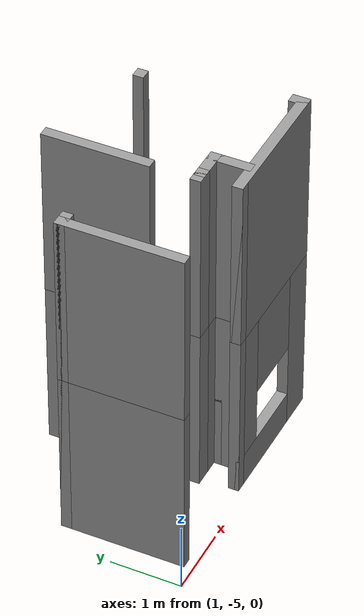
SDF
<sdf version="1.6">
 <model name="TwoStoreyBuilding">
  <link name="Wall_108">
   <pose>4.825 -4.775 2.5 0 0 -1.5708</pose>
   <visual name="Wall_108_Visual">
    <pose>0 0 1.25 0 -0 0</pose>
    <geometry><box><size>0.25 0.15 2.5</size></box></geometry>
    <material>
     <script><uri>file://media/materials/scripts/gazebo.material</uri><name>Gazebo/Grey</name></script>
     <ambient>1 1 1 1</ambient>
    </material>
    <meta><layer>1</layer></meta>
   </visual>
   <collision name="Wall_108_Collision">
    <pose>0 0 1.25 0 -0 0</pose>
    <geometry><box><size>0.25 0.15 2.5</size></box></geometry>
    <surface>
     <friction>
      <ode><mu>1</mu><mu2>1</mu2><fdir1>0 0 0</fdir1><slip1>0</slip1><slip2>0</slip2></ode>
      <torsional>
       <coefficient>1</coefficient>
       <patch_radius>0</patch_radius>
       <surface_radius>0</surface_radius>
       <use_patch_radius>1</use_patch_radius>
       <ode><slip>0</slip></ode>
      </torsional>
     </friction>
     <bounce><restitution_coefficient>0</restitution_coefficient><threshold>1e+06</threshold></bounce>
     <contact>
      <collide_without_contact>0</collide_without_contact>
      <collide_without_contact_bitmask>1</collide_without_contact_bitmask>
      <collide_bitmask>1</collide_bitmask>
      <ode>
       <soft_cfm>0</soft_cfm>
       <soft_erp>0.2</soft_erp>
       <kp>1e+13</kp>
       <kd>1</kd>
       <max_vel>0.01</max_vel>
       <min_depth>0</min_depth>
      </ode>
      <bullet>
       <split_impulse>1</split_impulse>
       <split_impulse_penetration_threshold>-0.01</split_impulse_penetration_threshold>
       <soft_cfm>0</soft_cfm>
       <soft_erp>0.2</soft_erp>
       <kp>1e+13</kp>
       <kd>1</kd>
      </bullet>
     </contact>
    </surface>
   </collision>
  </link>
  <link name="Wall_109">
   <pose>3.9 -4.825 2.5 0 -0 3.14159</pose>
   <visual name="Wall_109_Visual">
    <pose>0 0 1.25 0 -0 0</pose>
    <geometry><box><size>2 0.15 2.5</size></box></geometry>
    <material>
     <script><uri>file://media/materials/scripts/gazebo.material</uri><name>Gazebo/Grey</name></script>
     <ambient>1 1 1 1</ambient>
    </material>
    <meta><layer>1</layer></meta>
   </visual>
   <collision name="Wall_109_Collision">
    <pose>0 0 1.25 0 -0 0</pose>
    <geometry><box><size>2 0.15 2.5</size></box></geometry>
    <surface>
     <friction>
      <ode><mu>1</mu><mu2>1</mu2><fdir1>0 0 0</fdir1><slip1>0</slip1><slip2>0</slip2></ode>
      <torsional>
       <coefficient>1</coefficient>
       <patch_radius>0</patch_radius>
       <surface_radius>0</surface_radius>
       <use_patch_radius>1</use_patch_radius>
       <ode><slip>0</slip></ode>
      </torsional>
     </friction>
     <bounce><restitution_coefficient>0</restitution_coefficient><threshold>1e+06</threshold></bounce>
     <contact>
      <collide_without_contact>0</collide_without_contact>
      <collide_without_contact_bitmask>1</collide_without_contact_bitmask>
      <collide_bitmask>1</collide_bitmask>
      <ode>
       <soft_cfm>0</soft_cfm>
       <soft_erp>0.2</soft_erp>
       <kp>1e+13</kp>
       <kd>1</kd>
       <max_vel>0.01</max_vel>
       <min_depth>0</min_depth>
      </ode>
      <bullet>
       <split_impulse>1</split_impulse>
       <split_impulse_penetration_threshold>-0.01</split_impulse_penetration_threshold>
       <soft_cfm>0</soft_cfm>
       <soft_erp>0.2</soft_erp>
       <kp>1e+13</kp>
       <kd>1</kd>
      </bullet>
     </contact>
    </surface>
   </collision>
  </link>
  <link name="Wall_110">
   <pose>2.975 -4.825 2.5 0 -0 0</pose>
   <visual name="Wall_110_Visual">
    <pose>0 0 1.25 0 -0 0</pose>
    <geometry><box><size>0.15 0.15 2.5</size></box></geometry>
    <material>
     <script><uri>file://media/materials/scripts/gazebo.material</uri><name>Gazebo/Grey</name></script>
     <ambient>1 1 1 1</ambient>
    </material>
    <meta><layer>1</layer></meta>
   </visual>
   <collision name="Wall_110_Collision">
    <pose>0 0 1.25 0 -0 0</pose>
    <geometry><box><size>0.15 0.15 2.5</size></box></geometry>
    <surface>
     <friction>
      <ode><mu>1</mu><mu2>1</mu2><fdir1>0 0 0</fdir1><slip1>0</slip1><slip2>0</slip2></ode>
      <torsional>
       <coefficient>1</coefficient>
       <patch_radius>0</patch_radius>
       <surface_radius>0</surface_radius>
       <use_patch_radius>1</use_patch_radius>
       <ode><slip>0</slip></ode>
      </torsional>
     </friction>
     <bounce><restitution_coefficient>0</restitution_coefficient><threshold>1e+06</threshold></bounce>
     <contact>
      <collide_without_contact>0</collide_without_contact>
      <collide_without_contact_bitmask>1</collide_without_contact_bitmask>
      <collide_bitmask>1</collide_bitmask>
      <ode>
       <soft_cfm>0</soft_cfm>
       <soft_erp>0.2</soft_erp>
       <kp>1e+13</kp>
       <kd>1</kd>
       <max_vel>0.01</max_vel>
       <min_depth>0</min_depth>
      </ode>
      <bullet>
       <split_impulse>1</split_impulse>
       <split_impulse_penetration_threshold>-0.01</split_impulse_penetration_threshold>
       <soft_cfm>0</soft_cfm>
       <soft_erp>0.2</soft_erp>
       <kp>1e+13</kp>
       <kd>1</kd>
      </bullet>
     </contact>
    </surface>
   </collision>
  </link>
  <link name="Wall_111">
   <pose>3.33055 -4.57949 2.5 0 -0 1.5708</pose>
   <visual name="Wall_111_Visual">
    <pose>0 0 1.25 0 -0 0</pose>
    <geometry><box><size>0.5 0.15 2.5</size></box></geometry>
    <material>
     <script><uri>file://media/materials/scripts/gazebo.material</uri><name>Gazebo/Grey</name></script>
     <ambient>1 1 1 1</ambient>
    </material>
    <meta><layer>1</layer></meta>
   </visual>
   <collision name="Wall_111_Collision">
    <pose>0 0 1.25 0 -0 0</pose>
    <geometry><box><size>0.5 0.15 2.5</size></box></geometry>
    <surface>
     <friction>
      <ode><mu>1</mu><mu2>1</mu2><fdir1>0 0 0</fdir1><slip1>0</slip1><slip2>0</slip2></ode>
      <torsional>
       <coefficient>1</coefficient>
       <patch_radius>0</patch_radius>
       <surface_radius>0</surface_radius>
       <use_patch_radius>1</use_patch_radius>
       <ode><slip>0</slip></ode>
      </torsional>
     </friction>
     <bounce><restitution_coefficient>0</restitution_coefficient><threshold>1e+06</threshold></bounce>
     <contact>
      <collide_without_contact>0</collide_without_contact>
      <collide_without_contact_bitmask>1</collide_without_contact_bitmask>
      <collide_bitmask>1</collide_bitmask>
      <ode>
       <soft_cfm>0</soft_cfm>
       <soft_erp>0.2</soft_erp>
       <kp>1e+13</kp>
       <kd>1</kd>
       <max_vel>0.01</max_vel>
       <min_depth>0</min_depth>
      </ode>
      <bullet>
       <split_impulse>1</split_impulse>
       <split_impulse_penetration_threshold>-0.01</split_impulse_penetration_threshold>
       <soft_cfm>0</soft_cfm>
       <soft_erp>0.2</soft_erp>
       <kp>1e+13</kp>
       <kd>1</kd>
      </bullet>
     </contact>
    </surface>
   </collision>
  </link>
  <link name="Wall_112">
   <pose>3.33055 -4.35449 2.5 0 -0 1.5708</pose>
   <visual name="Wall_112_Visual">
    <pose>0 0 1.25 0 -0 0</pose>
    <geometry><box><size>0.25 0.15 2.5</size></box></geometry>
    <material>
     <script><uri>file://media/materials/scripts/gazebo.material</uri><name>Gazebo/Grey</name></script>
     <ambient>1 1 1 1</ambient>
    </material>
    <meta><layer>1</layer></meta>
   </visual>
   <collision name="Wall_112_Collision">
    <pose>0 0 1.25 0 -0 0</pose>
    <geometry><box><size>0.25 0.15 2.5</size></box></geometry>
    <surface>
     <friction>
      <ode><mu>1</mu><mu2>1</mu2><fdir1>0 0 0</fdir1><slip1>0</slip1><slip2>0</slip2></ode>
      <torsional>
       <coefficient>1</coefficient>
       <patch_radius>0</patch_radius>
       <surface_radius>0</surface_radius>
       <use_patch_radius>1</use_patch_radius>
       <ode><slip>0</slip></ode>
      </torsional>
     </friction>
     <bounce><restitution_coefficient>0</restitution_coefficient><threshold>1e+06</threshold></bounce>
     <contact>
      <collide_without_contact>0</collide_without_contact>
      <collide_without_contact_bitmask>1</collide_without_contact_bitmask>
      <collide_bitmask>1</collide_bitmask>
      <ode>
       <soft_cfm>0</soft_cfm>
       <soft_erp>0.2</soft_erp>
       <kp>1e+13</kp>
       <kd>1</kd>
       <max_vel>0.01</max_vel>
       <min_depth>0</min_depth>
      </ode>
      <bullet>
       <split_impulse>1</split_impulse>
       <split_impulse_penetration_threshold>-0.01</split_impulse_penetration_threshold>
       <soft_cfm>0</soft_cfm>
       <soft_erp>0.2</soft_erp>
       <kp>1e+13</kp>
       <kd>1</kd>
      </bullet>
     </contact>
    </surface>
   </collision>
  </link>
  <link name="Wall_113">
   <pose>3.15555 -4.30449 2.5 0 -0 3.14159</pose>
   <visual name="Wall_113_Visual">
    <pose>0 0 1.25 0 -0 0</pose>
    <geometry><box><size>0.5 0.15 2.5</size></box></geometry>
    <material>
     <script><uri>file://media/materials/scripts/gazebo.material</uri><name>Gazebo/Grey</name></script>
     <ambient>1 1 1 1</ambient>
    </material>
    <meta><layer>1</layer></meta>
   </visual>
   <collision name="Wall_113_Collision">
    <pose>0 0 1.25 0 -0 0</pose>
    <geometry><box><size>0.5 0.15 2.5</size></box></geometry>
    <surface>
     <friction>
      <ode><mu>1</mu><mu2>1</mu2><fdir1>0 0 0</fdir1><slip1>0</slip1><slip2>0</slip2></ode>
      <torsional>
       <coefficient>1</coefficient>
       <patch_radius>0</patch_radius>
       <surface_radius>0</surface_radius>
       <use_patch_radius>1</use_patch_radius>
       <ode><slip>0</slip></ode>
      </torsional>
     </friction>
     <bounce><restitution_coefficient>0</restitution_coefficient><threshold>1e+06</threshold></bounce>
     <contact>
      <collide_without_contact>0</collide_without_contact>
      <collide_without_contact_bitmask>1</collide_without_contact_bitmask>
      <collide_bitmask>1</collide_bitmask>
      <ode>
       <soft_cfm>0</soft_cfm>
       <soft_erp>0.2</soft_erp>
       <kp>1e+13</kp>
       <kd>1</kd>
       <max_vel>0.01</max_vel>
       <min_depth>0</min_depth>
      </ode>
      <bullet>
       <split_impulse>1</split_impulse>
       <split_impulse_penetration_threshold>-0.01</split_impulse_penetration_threshold>
       <soft_cfm>0</soft_cfm>
       <soft_erp>0.2</soft_erp>
       <kp>1e+13</kp>
       <kd>1</kd>
      </bullet>
     </contact>
    </surface>
   </collision>
  </link>
  <link name="Wall_114">
   <pose>2.93055 -4.30449 2.5 0 -0 3.14159</pose>
   <visual name="Wall_114_Visual">
    <pose>0 0 1.25 0 -0 0</pose>
    <geometry><box><size>0.25 0.15 2.5</size></box></geometry>
    <material>
     <script><uri>file://media/materials/scripts/gazebo.material</uri><name>Gazebo/Grey</name></script>
     <ambient>1 1 1 1</ambient>
    </material>
    <meta><layer>1</layer></meta>
   </visual>
   <collision name="Wall_114_Collision">
    <pose>0 0 1.25 0 -0 0</pose>
    <geometry><box><size>0.25 0.15 2.5</size></box></geometry>
    <surface>
     <friction>
      <ode><mu>1</mu><mu2>1</mu2><fdir1>0 0 0</fdir1><slip1>0</slip1><slip2>0</slip2></ode>
      <torsional>
       <coefficient>1</coefficient>
       <patch_radius>0</patch_radius>
       <surface_radius>0</surface_radius>
       <use_patch_radius>1</use_patch_radius>
       <ode><slip>0</slip></ode>
      </torsional>
     </friction>
     <bounce><restitution_coefficient>0</restitution_coefficient><threshold>1e+06</threshold></bounce>
     <contact>
      <collide_without_contact>0</collide_without_contact>
      <collide_without_contact_bitmask>1</collide_without_contact_bitmask>
      <collide_bitmask>1</collide_bitmask>
      <ode>
       <soft_cfm>0</soft_cfm>
       <soft_erp>0.2</soft_erp>
       <kp>1e+13</kp>
       <kd>1</kd>
       <max_vel>0.01</max_vel>
       <min_depth>0</min_depth>
      </ode>
      <bullet>
       <split_impulse>1</split_impulse>
       <split_impulse_penetration_threshold>-0.01</split_impulse_penetration_threshold>
       <soft_cfm>0</soft_cfm>
       <soft_erp>0.2</soft_erp>
       <kp>1e+13</kp>
       <kd>1</kd>
      </bullet>
     </contact>
    </surface>
   </collision>
  </link>
  <link name="Wall_115">
   <pose>2.87567 -2.93703 2.5 0 0 -1.5708</pose>
   <visual name="Wall_115_Visual">
    <pose>0 0 1.25 0 -0 0</pose>
    <geometry><box><size>1.5 0.15 2.5</size></box></geometry>
    <material>
     <script><uri>file://media/materials/scripts/gazebo.material</uri><name>Gazebo/Grey</name></script>
     <ambient>1 1 1 1</ambient>
    </material>
    <meta><layer>1</layer></meta>
   </visual>
   <collision name="Wall_115_Collision">
    <pose>0 0 1.25 0 -0 0</pose>
    <geometry><box><size>1.5 0.15 2.5</size></box></geometry>
    <surface>
     <friction>
      <ode><mu>1</mu><mu2>1</mu2><fdir1>0 0 0</fdir1><slip1>0</slip1><slip2>0</slip2></ode>
      <torsional>
       <coefficient>1</coefficient>
       <patch_radius>0</patch_radius>
       <surface_radius>0</surface_radius>
       <use_patch_radius>1</use_patch_radius>
       <ode><slip>0</slip></ode>
      </torsional>
     </friction>
     <bounce><restitution_coefficient>0</restitution_coefficient><threshold>1e+06</threshold></bounce>
     <contact>
      <collide_without_contact>0</collide_without_contact>
      <collide_without_contact_bitmask>1</collide_without_contact_bitmask>
      <collide_bitmask>1</collide_bitmask>
      <ode>
       <soft_cfm>0</soft_cfm>
       <soft_erp>0.2</soft_erp>
       <kp>1e+13</kp>
       <kd>1</kd>
       <max_vel>0.01</max_vel>
       <min_depth>0</min_depth>
      </ode>
      <bullet>
       <split_impulse>1</split_impulse>
       <split_impulse_penetration_threshold>-0.01</split_impulse_penetration_threshold>
       <soft_cfm>0</soft_cfm>
       <soft_erp>0.2</soft_erp>
       <kp>1e+13</kp>
       <kd>1</kd>
      </bullet>
     </contact>
    </surface>
   </collision>
  </link>
  <link name="Wall_136">
   <pose>4.45997 -2.7438 2.5 0 -0 0</pose>
   <visual name="Wall_136_Visual">
    <pose>0 0 1.25 0 -0 0</pose>
    <geometry><box><size>0.157523 0.15 2.5</size></box></geometry>
    <material>
     <script><uri>file://media/materials/scripts/gazebo.material</uri><name>Gazebo/Grey</name></script>
     <ambient>1 1 1 1</ambient>
    </material>
    <meta><layer>1</layer></meta>
   </visual>
   <collision name="Wall_136_Collision">
    <pose>0 0 1.25 0 -0 0</pose>
    <geometry><box><size>0.157523 0.15 2.5</size></box></geometry>
    <surface>
     <friction>
      <ode><mu>1</mu><mu2>1</mu2><fdir1>0 0 0</fdir1><slip1>0</slip1><slip2>0</slip2></ode>
      <torsional>
       <coefficient>1</coefficient>
       <patch_radius>0</patch_radius>
       <surface_radius>0</surface_radius>
       <use_patch_radius>1</use_patch_radius>
       <ode><slip>0</slip></ode>
      </torsional>
     </friction>
     <bounce><restitution_coefficient>0</restitution_coefficient><threshold>1e+06</threshold></bounce>
     <contact>
      <collide_without_contact>0</collide_without_contact>
      <collide_without_contact_bitmask>1</collide_without_contact_bitmask>
      <collide_bitmask>1</collide_bitmask>
      <ode>
       <soft_cfm>0</soft_cfm>
       <soft_erp>0.2</soft_erp>
       <kp>1e+13</kp>
       <kd>1</kd>
       <max_vel>0.01</max_vel>
       <min_depth>0</min_depth>
      </ode>
      <bullet>
       <split_impulse>1</split_impulse>
       <split_impulse_penetration_threshold>-0.01</split_impulse_penetration_threshold>
       <soft_cfm>0</soft_cfm>
       <soft_erp>0.2</soft_erp>
       <kp>1e+13</kp>
       <kd>1</kd>
      </bullet>
     </contact>
    </surface>
   </collision>
  </link>
  <link name="Wall_137">
   <pose>1.40282 -4.00282 2.5 0 0 -1.5708</pose>
   <visual name="Wall_137_Visual">
    <pose>0 0 1.25 0 -0 0</pose>
    <geometry><box><size>1.75 0.15 2.5</size></box></geometry>
    <material>
     <script><uri>file://media/materials/scripts/gazebo.material</uri><name>Gazebo/Grey</name></script>
     <ambient>1 1 1 1</ambient>
    </material>
    <meta><layer>1</layer></meta>
   </visual>
   <collision name="Wall_137_Collision">
    <pose>0 0 1.25 0 -0 0</pose>
    <geometry><box><size>1.75 0.15 2.5</size></box></geometry>
    <surface>
     <friction>
      <ode><mu>1</mu><mu2>1</mu2><fdir1>0 0 0</fdir1><slip1>0</slip1><slip2>0</slip2></ode>
      <torsional>
       <coefficient>1</coefficient>
       <patch_radius>0</patch_radius>
       <surface_radius>0</surface_radius>
       <use_patch_radius>1</use_patch_radius>
       <ode><slip>0</slip></ode>
      </torsional>
     </friction>
     <bounce><restitution_coefficient>0</restitution_coefficient><threshold>1e+06</threshold></bounce>
     <contact>
      <collide_without_contact>0</collide_without_contact>
      <collide_without_contact_bitmask>1</collide_without_contact_bitmask>
      <collide_bitmask>1</collide_bitmask>
      <ode>
       <soft_cfm>0</soft_cfm>
       <soft_erp>0.2</soft_erp>
       <kp>1e+13</kp>
       <kd>1</kd>
       <max_vel>0.01</max_vel>
       <min_depth>0</min_depth>
      </ode>
      <bullet>
       <split_impulse>1</split_impulse>
       <split_impulse_penetration_threshold>-0.01</split_impulse_penetration_threshold>
       <soft_cfm>0</soft_cfm>
       <soft_erp>0.2</soft_erp>
       <kp>1e+13</kp>
       <kd>1</kd>
      </bullet>
     </contact>
    </surface>
   </collision>
  </link>
  <link name="Wall_32">
   <pose>4.825 -4.775 0 0 0 -1.5708</pose>
   <visual name="Wall_32_Visual">
    <pose>0 0 1.25 0 -0 0</pose>
    <geometry><box><size>0.25 0.15 2.5</size></box></geometry>
    <material>
     <script><uri>file://media/materials/scripts/gazebo.material</uri><name>Gazebo/Grey</name></script>
     <ambient>1 1 1 1</ambient>
    </material>
    <meta><layer>0</layer></meta>
   </visual>
   <collision name="Wall_32_Collision">
    <pose>0 0 1.25 0 -0 0</pose>
    <geometry><box><size>0.25 0.15 2.5</size></box></geometry>
    <surface>
     <friction>
      <ode><mu>1</mu><mu2>1</mu2><fdir1>0 0 0</fdir1><slip1>0</slip1><slip2>0</slip2></ode>
      <torsional>
       <coefficient>1</coefficient>
       <patch_radius>0</patch_radius>
       <surface_radius>0</surface_radius>
       <use_patch_radius>1</use_patch_radius>
       <ode><slip>0</slip></ode>
      </torsional>
     </friction>
     <bounce><restitution_coefficient>0</restitution_coefficient><threshold>1e+06</threshold></bounce>
     <contact>
      <collide_without_contact>0</collide_without_contact>
      <collide_without_contact_bitmask>1</collide_without_contact_bitmask>
      <collide_bitmask>1</collide_bitmask>
      <ode>
       <soft_cfm>0</soft_cfm>
       <soft_erp>0.2</soft_erp>
       <kp>1e+13</kp>
       <kd>1</kd>
       <max_vel>0.01</max_vel>
       <min_depth>0</min_depth>
      </ode>
      <bullet>
       <split_impulse>1</split_impulse>
       <split_impulse_penetration_threshold>-0.01</split_impulse_penetration_threshold>
       <soft_cfm>0</soft_cfm>
       <soft_erp>0.2</soft_erp>
       <kp>1e+13</kp>
       <kd>1</kd>
      </bullet>
     </contact>
    </surface>
   </collision>
  </link>
  <link name="Wall_33">
   <pose>3.9 -4.825 0 0 -0 3.14159</pose>
   <visual name="Wall_33_Visual_2">
    <pose>0.736825 0 1.5 0 -0 0</pose>
    <geometry><box><size>0.526349 0.15 2</size></box></geometry>
    <material>
     <script><uri>file://media/materials/scripts/gazebo.material</uri><name>Gazebo/Grey</name></script>
     <ambient>1 1 1 1</ambient>
    </material>
    <meta><layer>0</layer></meta>
   </visual>
   <visual name="Wall_33_Visual_0">
    <pose>-0.74257 0 1.25 0 -0 0</pose>
    <geometry><box><size>0.514861 0.15 2.5</size></box></geometry>
    <material>
     <script><uri>file://media/materials/scripts/gazebo.material</uri><name>Gazebo/Grey</name></script>
     <ambient>1 1 1 1</ambient>
    </material>
    <meta><layer>0</layer></meta>
   </visual>
   <visual name="Wall_33_Visual_1">
    <pose>0.25743 0 0.25 0 -0 0</pose>
    <geometry><box><size>1.48514 0.15 0.5</size></box></geometry>
    <material>
     <script><uri>file://media/materials/scripts/gazebo.material</uri><name>Gazebo/Grey</name></script>
     <ambient>1 1 1 1</ambient>
    </material>
    <meta><layer>0</layer></meta>
   </visual>
   <visual name="Wall_33_Visual_3">
    <pose>-0.005744 0 1.9 0 -0 0</pose>
    <geometry><box><size>0.95879 0.15 1.2</size></box></geometry>
    <material>
     <script><uri>file://media/materials/scripts/gazebo.material</uri><name>Gazebo/Grey</name></script>
     <ambient>1 1 1 1</ambient>
    </material>
    <meta><layer>0</layer></meta>
   </visual>
   <collision name="Wall_33_Collision_0">
    <pose>-0.74257 0 1.25 0 -0 0</pose>
    <geometry><box><size>0.514861 0.15 2.5</size></box></geometry>
    <surface>
     <friction>
      <ode><mu>1</mu><mu2>1</mu2><fdir1>0 0 0</fdir1><slip1>0</slip1><slip2>0</slip2></ode>
      <torsional>
       <coefficient>1</coefficient>
       <patch_radius>0</patch_radius>
       <surface_radius>0</surface_radius>
       <use_patch_radius>1</use_patch_radius>
       <ode><slip>0</slip></ode>
      </torsional>
     </friction>
     <bounce><restitution_coefficient>0</restitution_coefficient><threshold>1e+06</threshold></bounce>
     <contact>
      <collide_without_contact>0</collide_without_contact>
      <collide_without_contact_bitmask>1</collide_without_contact_bitmask>
      <collide_bitmask>1</collide_bitmask>
      <ode>
       <soft_cfm>0</soft_cfm>
       <soft_erp>0.2</soft_erp>
       <kp>1e+13</kp>
       <kd>1</kd>
       <max_vel>0.01</max_vel>
       <min_depth>0</min_depth>
      </ode>
      <bullet>
       <split_impulse>1</split_impulse>
       <split_impulse_penetration_threshold>-0.01</split_impulse_penetration_threshold>
       <soft_cfm>0</soft_cfm>
       <soft_erp>0.2</soft_erp>
       <kp>1e+13</kp>
       <kd>1</kd>
      </bullet>
     </contact>
    </surface>
   </collision>
   <collision name="Wall_33_Collision_1">
    <pose>0.25743 0 0.25 0 -0 0</pose>
    <geometry><box><size>1.48514 0.15 0.5</size></box></geometry>
    <surface>
     <friction>
      <ode><mu>1</mu><mu2>1</mu2><fdir1>0 0 0</fdir1><slip1>0</slip1><slip2>0</slip2></ode>
      <torsional>
       <coefficient>1</coefficient>
       <patch_radius>0</patch_radius>
       <surface_radius>0</surface_radius>
       <use_patch_radius>1</use_patch_radius>
       <ode><slip>0</slip></ode>
      </torsional>
     </friction>
     <bounce><restitution_coefficient>0</restitution_coefficient><threshold>1e+06</threshold></bounce>
     <contact>
      <collide_without_contact>0</collide_without_contact>
      <collide_without_contact_bitmask>1</collide_without_contact_bitmask>
      <collide_bitmask>1</collide_bitmask>
      <ode>
       <soft_cfm>0</soft_cfm>
       <soft_erp>0.2</soft_erp>
       <kp>1e+13</kp>
       <kd>1</kd>
       <max_vel>0.01</max_vel>
       <min_depth>0</min_depth>
      </ode>
      <bullet>
       <split_impulse>1</split_impulse>
       <split_impulse_penetration_threshold>-0.01</split_impulse_penetration_threshold>
       <soft_cfm>0</soft_cfm>
       <soft_erp>0.2</soft_erp>
       <kp>1e+13</kp>
       <kd>1</kd>
      </bullet>
     </contact>
    </surface>
   </collision>
   <collision name="Wall_33_Collision_2">
    <pose>0.736825 0 1.5 0 -0 0</pose>
    <geometry><box><size>0.526349 0.15 2</size></box></geometry>
    <surface>
     <friction>
      <ode><mu>1</mu><mu2>1</mu2><fdir1>0 0 0</fdir1><slip1>0</slip1><slip2>0</slip2></ode>
      <torsional>
       <coefficient>1</coefficient>
       <patch_radius>0</patch_radius>
       <surface_radius>0</surface_radius>
       <use_patch_radius>1</use_patch_radius>
       <ode><slip>0</slip></ode>
      </torsional>
     </friction>
     <bounce><restitution_coefficient>0</restitution_coefficient><threshold>1e+06</threshold></bounce>
     <contact>
      <collide_without_contact>0</collide_without_contact>
      <collide_without_contact_bitmask>1</collide_without_contact_bitmask>
      <collide_bitmask>1</collide_bitmask>
      <ode>
       <soft_cfm>0</soft_cfm>
       <soft_erp>0.2</soft_erp>
       <kp>1e+13</kp>
       <kd>1</kd>
       <max_vel>0.01</max_vel>
       <min_depth>0</min_depth>
      </ode>
      <bullet>
       <split_impulse>1</split_impulse>
       <split_impulse_penetration_threshold>-0.01</split_impulse_penetration_threshold>
       <soft_cfm>0</soft_cfm>
       <soft_erp>0.2</soft_erp>
       <kp>1e+13</kp>
       <kd>1</kd>
      </bullet>
     </contact>
    </surface>
   </collision>
   <collision name="Wall_33_Collision_3">
    <pose>-0.005744 0 1.9 0 -0 0</pose>
    <geometry><box><size>0.95879 0.15 1.2</size></box></geometry>
    <surface>
     <friction>
      <ode><mu>1</mu><mu2>1</mu2><fdir1>0 0 0</fdir1><slip1>0</slip1><slip2>0</slip2></ode>
      <torsional>
       <coefficient>1</coefficient>
       <patch_radius>0</patch_radius>
       <surface_radius>0</surface_radius>
       <use_patch_radius>1</use_patch_radius>
       <ode><slip>0</slip></ode>
      </torsional>
     </friction>
     <bounce><restitution_coefficient>0</restitution_coefficient><threshold>1e+06</threshold></bounce>
     <contact>
      <collide_without_contact>0</collide_without_contact>
      <collide_without_contact_bitmask>1</collide_without_contact_bitmask>
      <collide_bitmask>1</collide_bitmask>
      <ode>
       <soft_cfm>0</soft_cfm>
       <soft_erp>0.2</soft_erp>
       <kp>1e+13</kp>
       <kd>1</kd>
       <max_vel>0.01</max_vel>
       <min_depth>0</min_depth>
      </ode>
      <bullet>
       <split_impulse>1</split_impulse>
       <split_impulse_penetration_threshold>-0.01</split_impulse_penetration_threshold>
       <soft_cfm>0</soft_cfm>
       <soft_erp>0.2</soft_erp>
       <kp>1e+13</kp>
       <kd>1</kd>
      </bullet>
     </contact>
    </surface>
   </collision>
  </link>
  <link name="Wall_35">
   <pose>2.975 -4.825 0 0 -0 0</pose>
   <visual name="Wall_35_Visual">
    <pose>0 0 1.25 0 -0 0</pose>
    <geometry><box><size>0.15 0.15 2.5</size></box></geometry>
    <material>
     <script><uri>file://media/materials/scripts/gazebo.material</uri><name>Gazebo/Grey</name></script>
     <ambient>1 1 1 1</ambient>
    </material>
    <meta><layer>0</layer></meta>
   </visual>
   <collision name="Wall_35_Collision">
    <pose>0 0 1.25 0 -0 0</pose>
    <geometry><box><size>0.15 0.15 2.5</size></box></geometry>
    <surface>
     <friction>
      <ode><mu>1</mu><mu2>1</mu2><fdir1>0 0 0</fdir1><slip1>0</slip1><slip2>0</slip2></ode>
      <torsional>
       <coefficient>1</coefficient>
       <patch_radius>0</patch_radius>
       <surface_radius>0</surface_radius>
       <use_patch_radius>1</use_patch_radius>
       <ode><slip>0</slip></ode>
      </torsional>
     </friction>
     <bounce><restitution_coefficient>0</restitution_coefficient><threshold>1e+06</threshold></bounce>
     <contact>
      <collide_without_contact>0</collide_without_contact>
      <collide_without_contact_bitmask>1</collide_without_contact_bitmask>
      <collide_bitmask>1</collide_bitmask>
      <ode>
       <soft_cfm>0</soft_cfm>
       <soft_erp>0.2</soft_erp>
       <kp>1e+13</kp>
       <kd>1</kd>
       <max_vel>0.01</max_vel>
       <min_depth>0</min_depth>
      </ode>
      <bullet>
       <split_impulse>1</split_impulse>
       <split_impulse_penetration_threshold>-0.01</split_impulse_penetration_threshold>
       <soft_cfm>0</soft_cfm>
       <soft_erp>0.2</soft_erp>
       <kp>1e+13</kp>
       <kd>1</kd>
      </bullet>
     </contact>
    </surface>
   </collision>
  </link>
  <link name="Wall_37">
   <pose>3.33055 -4.57949 0 0 -0 1.5708</pose>
   <visual name="Wall_37_Visual">
    <pose>0 0 1.25 0 -0 0</pose>
    <geometry><box><size>0.5 0.15 2.5</size></box></geometry>
    <material>
     <script><uri>file://media/materials/scripts/gazebo.material</uri><name>Gazebo/Grey</name></script>
     <ambient>1 1 1 1</ambient>
    </material>
    <meta><layer>0</layer></meta>
   </visual>
   <collision name="Wall_37_Collision">
    <pose>0 0 1.25 0 -0 0</pose>
    <geometry><box><size>0.5 0.15 2.5</size></box></geometry>
    <surface>
     <friction>
      <ode><mu>1</mu><mu2>1</mu2><fdir1>0 0 0</fdir1><slip1>0</slip1><slip2>0</slip2></ode>
      <torsional>
       <coefficient>1</coefficient>
       <patch_radius>0</patch_radius>
       <surface_radius>0</surface_radius>
       <use_patch_radius>1</use_patch_radius>
       <ode><slip>0</slip></ode>
      </torsional>
     </friction>
     <bounce><restitution_coefficient>0</restitution_coefficient><threshold>1e+06</threshold></bounce>
     <contact>
      <collide_without_contact>0</collide_without_contact>
      <collide_without_contact_bitmask>1</collide_without_contact_bitmask>
      <collide_bitmask>1</collide_bitmask>
      <ode>
       <soft_cfm>0</soft_cfm>
       <soft_erp>0.2</soft_erp>
       <kp>1e+13</kp>
       <kd>1</kd>
       <max_vel>0.01</max_vel>
       <min_depth>0</min_depth>
      </ode>
      <bullet>
       <split_impulse>1</split_impulse>
       <split_impulse_penetration_threshold>-0.01</split_impulse_penetration_threshold>
       <soft_cfm>0</soft_cfm>
       <soft_erp>0.2</soft_erp>
       <kp>1e+13</kp>
       <kd>1</kd>
      </bullet>
     </contact>
    </surface>
   </collision>
  </link>
  <link name="Wall_38">
   <pose>3.33055 -4.35449 0 0 -0 1.5708</pose>
   <visual name="Wall_38_Visual">
    <pose>0 0 1.25 0 -0 0</pose>
    <geometry><box><size>0.25 0.15 2.5</size></box></geometry>
    <material>
     <script><uri>file://media/materials/scripts/gazebo.material</uri><name>Gazebo/Grey</name></script>
     <ambient>1 1 1 1</ambient>
    </material>
    <meta><layer>0</layer></meta>
   </visual>
   <collision name="Wall_38_Collision">
    <pose>0 0 1.25 0 -0 0</pose>
    <geometry><box><size>0.25 0.15 2.5</size></box></geometry>
    <surface>
     <friction>
      <ode><mu>1</mu><mu2>1</mu2><fdir1>0 0 0</fdir1><slip1>0</slip1><slip2>0</slip2></ode>
      <torsional>
       <coefficient>1</coefficient>
       <patch_radius>0</patch_radius>
       <surface_radius>0</surface_radius>
       <use_patch_radius>1</use_patch_radius>
       <ode><slip>0</slip></ode>
      </torsional>
     </friction>
     <bounce><restitution_coefficient>0</restitution_coefficient><threshold>1e+06</threshold></bounce>
     <contact>
      <collide_without_contact>0</collide_without_contact>
      <collide_without_contact_bitmask>1</collide_without_contact_bitmask>
      <collide_bitmask>1</collide_bitmask>
      <ode>
       <soft_cfm>0</soft_cfm>
       <soft_erp>0.2</soft_erp>
       <kp>1e+13</kp>
       <kd>1</kd>
       <max_vel>0.01</max_vel>
       <min_depth>0</min_depth>
      </ode>
      <bullet>
       <split_impulse>1</split_impulse>
       <split_impulse_penetration_threshold>-0.01</split_impulse_penetration_threshold>
       <soft_cfm>0</soft_cfm>
       <soft_erp>0.2</soft_erp>
       <kp>1e+13</kp>
       <kd>1</kd>
      </bullet>
     </contact>
    </surface>
   </collision>
  </link>
  <link name="Wall_39">
   <pose>3.15555 -4.30449 0 0 -0 3.14159</pose>
   <visual name="Wall_39_Visual">
    <pose>0 0 1.25 0 -0 0</pose>
    <geometry><box><size>0.5 0.15 2.5</size></box></geometry>
    <material>
     <script><uri>file://media/materials/scripts/gazebo.material</uri><name>Gazebo/Grey</name></script>
     <ambient>1 1 1 1</ambient>
    </material>
    <meta><layer>0</layer></meta>
   </visual>
   <collision name="Wall_39_Collision">
    <pose>0 0 1.25 0 -0 0</pose>
    <geometry><box><size>0.5 0.15 2.5</size></box></geometry>
    <surface>
     <friction>
      <ode><mu>1</mu><mu2>1</mu2><fdir1>0 0 0</fdir1><slip1>0</slip1><slip2>0</slip2></ode>
      <torsional>
       <coefficient>1</coefficient>
       <patch_radius>0</patch_radius>
       <surface_radius>0</surface_radius>
       <use_patch_radius>1</use_patch_radius>
       <ode><slip>0</slip></ode>
      </torsional>
     </friction>
     <bounce><restitution_coefficient>0</restitution_coefficient><threshold>1e+06</threshold></bounce>
     <contact>
      <collide_without_contact>0</collide_without_contact>
      <collide_without_contact_bitmask>1</collide_without_contact_bitmask>
      <collide_bitmask>1</collide_bitmask>
      <ode>
       <soft_cfm>0</soft_cfm>
       <soft_erp>0.2</soft_erp>
       <kp>1e+13</kp>
       <kd>1</kd>
       <max_vel>0.01</max_vel>
       <min_depth>0</min_depth>
      </ode>
      <bullet>
       <split_impulse>1</split_impulse>
       <split_impulse_penetration_threshold>-0.01</split_impulse_penetration_threshold>
       <soft_cfm>0</soft_cfm>
       <soft_erp>0.2</soft_erp>
       <kp>1e+13</kp>
       <kd>1</kd>
      </bullet>
     </contact>
    </surface>
   </collision>
  </link>
  <link name="Wall_40">
   <pose>2.93055 -4.30449 0 0 -0 3.14159</pose>
   <visual name="Wall_40_Visual">
    <pose>0 0 1.25 0 -0 0</pose>
    <geometry><box><size>0.25 0.15 2.5</size></box></geometry>
    <material>
     <script><uri>file://media/materials/scripts/gazebo.material</uri><name>Gazebo/Grey</name></script>
     <ambient>1 1 1 1</ambient>
    </material>
    <meta><layer>0</layer></meta>
   </visual>
   <collision name="Wall_40_Collision">
    <pose>0 0 1.25 0 -0 0</pose>
    <geometry><box><size>0.25 0.15 2.5</size></box></geometry>
    <surface>
     <friction>
      <ode><mu>1</mu><mu2>1</mu2><fdir1>0 0 0</fdir1><slip1>0</slip1><slip2>0</slip2></ode>
      <torsional>
       <coefficient>1</coefficient>
       <patch_radius>0</patch_radius>
       <surface_radius>0</surface_radius>
       <use_patch_radius>1</use_patch_radius>
       <ode><slip>0</slip></ode>
      </torsional>
     </friction>
     <bounce><restitution_coefficient>0</restitution_coefficient><threshold>1e+06</threshold></bounce>
     <contact>
      <collide_without_contact>0</collide_without_contact>
      <collide_without_contact_bitmask>1</collide_without_contact_bitmask>
      <collide_bitmask>1</collide_bitmask>
      <ode>
       <soft_cfm>0</soft_cfm>
       <soft_erp>0.2</soft_erp>
       <kp>1e+13</kp>
       <kd>1</kd>
       <max_vel>0.01</max_vel>
       <min_depth>0</min_depth>
      </ode>
      <bullet>
       <split_impulse>1</split_impulse>
       <split_impulse_penetration_threshold>-0.01</split_impulse_penetration_threshold>
       <soft_cfm>0</soft_cfm>
       <soft_erp>0.2</soft_erp>
       <kp>1e+13</kp>
       <kd>1</kd>
      </bullet>
     </contact>
    </surface>
   </collision>
  </link>
  <link name="Wall_42">
   <pose>2.87567 -2.93703 0 0 0 -1.5708</pose>
   <visual name="Wall_42_Visual">
    <pose>0 0 1.25 0 -0 0</pose>
    <geometry><box><size>1.5 0.15 2.5</size></box></geometry>
    <material>
     <script><uri>file://media/materials/scripts/gazebo.material</uri><name>Gazebo/Grey</name></script>
     <ambient>1 1 1 1</ambient>
    </material>
    <meta><layer>0</layer></meta>
   </visual>
   <collision name="Wall_42_Collision">
    <pose>0 0 1.25 0 -0 0</pose>
    <geometry><box><size>1.5 0.15 2.5</size></box></geometry>
    <surface>
     <friction>
      <ode><mu>1</mu><mu2>1</mu2><fdir1>0 0 0</fdir1><slip1>0</slip1><slip2>0</slip2></ode>
      <torsional>
       <coefficient>1</coefficient>
       <patch_radius>0</patch_radius>
       <surface_radius>0</surface_radius>
       <use_patch_radius>1</use_patch_radius>
       <ode><slip>0</slip></ode>
      </torsional>
     </friction>
     <bounce><restitution_coefficient>0</restitution_coefficient><threshold>1e+06</threshold></bounce>
     <contact>
      <collide_without_contact>0</collide_without_contact>
      <collide_without_contact_bitmask>1</collide_without_contact_bitmask>
      <collide_bitmask>1</collide_bitmask>
      <ode>
       <soft_cfm>0</soft_cfm>
       <soft_erp>0.2</soft_erp>
       <kp>1e+13</kp>
       <kd>1</kd>
       <max_vel>0.01</max_vel>
       <min_depth>0</min_depth>
      </ode>
      <bullet>
       <split_impulse>1</split_impulse>
       <split_impulse_penetration_threshold>-0.01</split_impulse_penetration_threshold>
       <soft_cfm>0</soft_cfm>
       <soft_erp>0.2</soft_erp>
       <kp>1e+13</kp>
       <kd>1</kd>
      </bullet>
     </contact>
    </surface>
   </collision>
  </link>
  <link name="Wall_6">
   <pose>1.45282 -3.20282 0 0 -0 3.14159</pose>
   <visual name="Wall_6_Visual">
    <pose>0 0 1.25 0 -0 0</pose>
    <geometry><box><size>0.25 0.15 2.5</size></box></geometry>
    <material>
     <script><uri>file://media/materials/scripts/gazebo.material</uri><name>Gazebo/Grey</name></script>
     <ambient>1 1 1 1</ambient>
    </material>
    <meta><layer>0</layer></meta>
   </visual>
   <collision name="Wall_6_Collision">
    <pose>0 0 1.25 0 -0 0</pose>
    <geometry><box><size>0.25 0.15 2.5</size></box></geometry>
    <surface>
     <friction>
      <ode><mu>1</mu><mu2>1</mu2><fdir1>0 0 0</fdir1><slip1>0</slip1><slip2>0</slip2></ode>
      <torsional>
       <coefficient>1</coefficient>
       <patch_radius>0</patch_radius>
       <surface_radius>0</surface_radius>
       <use_patch_radius>1</use_patch_radius>
       <ode><slip>0</slip></ode>
      </torsional>
     </friction>
     <bounce><restitution_coefficient>0</restitution_coefficient><threshold>1e+06</threshold></bounce>
     <contact>
      <collide_without_contact>0</collide_without_contact>
      <collide_without_contact_bitmask>1</collide_without_contact_bitmask>
      <collide_bitmask>1</collide_bitmask>
      <ode>
       <soft_cfm>0</soft_cfm>
       <soft_erp>0.2</soft_erp>
       <kp>1e+13</kp>
       <kd>1</kd>
       <max_vel>0.01</max_vel>
       <min_depth>0</min_depth>
      </ode>
      <bullet>
       <split_impulse>1</split_impulse>
       <split_impulse_penetration_threshold>-0.01</split_impulse_penetration_threshold>
       <soft_cfm>0</soft_cfm>
       <soft_erp>0.2</soft_erp>
       <kp>1e+13</kp>
       <kd>1</kd>
      </bullet>
     </contact>
    </surface>
   </collision>
  </link>
  <link name="Wall_7">
   <pose>1.40282 -3.20282 0 0 -0 0</pose>
   <visual name="Wall_7_Visual">
    <pose>0 0 1.25 0 -0 0</pose>
    <geometry><box><size>0.15 0.15 2.5</size></box></geometry>
    <material>
     <script><uri>file://media/materials/scripts/gazebo.material</uri><name>Gazebo/Grey</name></script>
     <ambient>1 1 1 1</ambient>
    </material>
    <meta><layer>0</layer></meta>
   </visual>
   <collision name="Wall_7_Collision">
    <pose>0 0 1.25 0 -0 0</pose>
    <geometry><box><size>0.15 0.15 2.5</size></box></geometry>
    <surface>
     <friction>
      <ode><mu>1</mu><mu2>1</mu2><fdir1>0 0 0</fdir1><slip1>0</slip1><slip2>0</slip2></ode>
      <torsional>
       <coefficient>1</coefficient>
       <patch_radius>0</patch_radius>
       <surface_radius>0</surface_radius>
       <use_patch_radius>1</use_patch_radius>
       <ode><slip>0</slip></ode>
      </torsional>
     </friction>
     <bounce><restitution_coefficient>0</restitution_coefficient><threshold>1e+06</threshold></bounce>
     <contact>
      <collide_without_contact>0</collide_without_contact>
      <collide_without_contact_bitmask>1</collide_without_contact_bitmask>
      <collide_bitmask>1</collide_bitmask>
      <ode>
       <soft_cfm>0</soft_cfm>
       <soft_erp>0.2</soft_erp>
       <kp>1e+13</kp>
       <kd>1</kd>
       <max_vel>0.01</max_vel>
       <min_depth>0</min_depth>
      </ode>
      <bullet>
       <split_impulse>1</split_impulse>
       <split_impulse_penetration_threshold>-0.01</split_impulse_penetration_threshold>
       <soft_cfm>0</soft_cfm>
       <soft_erp>0.2</soft_erp>
       <kp>1e+13</kp>
       <kd>1</kd>
      </bullet>
     </contact>
    </surface>
   </collision>
  </link>
  <link name="Wall_81">
   <pose>4.45997 -2.7438 0 0 -0 0</pose>
   <visual name="Wall_81_Visual">
    <pose>0 0 1.25 0 -0 0</pose>
    <geometry><box><size>0.157523 0.15 2.5</size></box></geometry>
    <material>
     <script><uri>file://media/materials/scripts/gazebo.material</uri><name>Gazebo/Grey</name></script>
     <ambient>1 1 1 1</ambient>
    </material>
    <meta><layer>0</layer></meta>
   </visual>
   <collision name="Wall_81_Collision">
    <pose>0 0 1.25 0 -0 0</pose>
    <geometry><box><size>0.157523 0.15 2.5</size></box></geometry>
    <surface>
     <friction>
      <ode><mu>1</mu><mu2>1</mu2><fdir1>0 0 0</fdir1><slip1>0</slip1><slip2>0</slip2></ode>
      <torsional>
       <coefficient>1</coefficient>
       <patch_radius>0</patch_radius>
       <surface_radius>0</surface_radius>
       <use_patch_radius>1</use_patch_radius>
       <ode><slip>0</slip></ode>
      </torsional>
     </friction>
     <bounce><restitution_coefficient>0</restitution_coefficient><threshold>1e+06</threshold></bounce>
     <contact>
      <collide_without_contact>0</collide_without_contact>
      <collide_without_contact_bitmask>1</collide_without_contact_bitmask>
      <collide_bitmask>1</collide_bitmask>
      <ode>
       <soft_cfm>0</soft_cfm>
       <soft_erp>0.2</soft_erp>
       <kp>1e+13</kp>
       <kd>1</kd>
       <max_vel>0.01</max_vel>
       <min_depth>0</min_depth>
      </ode>
      <bullet>
       <split_impulse>1</split_impulse>
       <split_impulse_penetration_threshold>-0.01</split_impulse_penetration_threshold>
       <soft_cfm>0</soft_cfm>
       <soft_erp>0.2</soft_erp>
       <kp>1e+13</kp>
       <kd>1</kd>
      </bullet>
     </contact>
    </surface>
   </collision>
  </link>
  <link name="Wall_83">
   <pose>1.40282 -4.00282 0 0 0 -1.5708</pose>
   <visual name="Wall_83_Visual">
    <pose>0 0 1.25 0 -0 0</pose>
    <geometry><box><size>1.75 0.15 2.5</size></box></geometry>
    <material>
     <script><uri>file://media/materials/scripts/gazebo.material</uri><name>Gazebo/Grey</name></script>
     <ambient>1 1 1 1</ambient>
    </material>
    <meta><layer>0</layer></meta>
   </visual>
   <collision name="Wall_83_Collision">
    <pose>0 0 1.25 0 -0 0</pose>
    <geometry><box><size>1.75 0.15 2.5</size></box></geometry>
    <surface>
     <friction>
      <ode><mu>1</mu><mu2>1</mu2><fdir1>0 0 0</fdir1><slip1>0</slip1><slip2>0</slip2></ode>
      <torsional>
       <coefficient>1</coefficient>
       <patch_radius>0</patch_radius>
       <surface_radius>0</surface_radius>
       <use_patch_radius>1</use_patch_radius>
       <ode><slip>0</slip></ode>
      </torsional>
     </friction>
     <bounce><restitution_coefficient>0</restitution_coefficient><threshold>1e+06</threshold></bounce>
     <contact>
      <collide_without_contact>0</collide_without_contact>
      <collide_without_contact_bitmask>1</collide_without_contact_bitmask>
      <collide_bitmask>1</collide_bitmask>
      <ode>
       <soft_cfm>0</soft_cfm>
       <soft_erp>0.2</soft_erp>
       <kp>1e+13</kp>
       <kd>1</kd>
       <max_vel>0.01</max_vel>
       <min_depth>0</min_depth>
      </ode>
      <bullet>
       <split_impulse>1</split_impulse>
       <split_impulse_penetration_threshold>-0.01</split_impulse_penetration_threshold>
       <soft_cfm>0</soft_cfm>
       <soft_erp>0.2</soft_erp>
       <kp>1e+13</kp>
       <kd>1</kd>
      </bullet>
     </contact>
    </surface>
   </collision>
  </link>
  <link name="Wall_86">
   <pose>1.45282 -3.20282 2.5 0 -0 3.14159</pose>
   <visual name="Wall_86_Visual">
    <pose>0 0 1.25 0 -0 0</pose>
    <geometry><box><size>0.25 0.15 2.5</size></box></geometry>
    <material>
     <script><uri>file://media/materials/scripts/gazebo.material</uri><name>Gazebo/Grey</name></script>
     <ambient>1 1 1 1</ambient>
    </material>
    <meta><layer>1</layer></meta>
   </visual>
   <collision name="Wall_86_Collision">
    <pose>0 0 1.25 0 -0 0</pose>
    <geometry><box><size>0.25 0.15 2.5</size></box></geometry>
    <surface>
     <friction>
      <ode><mu>1</mu><mu2>1</mu2><fdir1>0 0 0</fdir1><slip1>0</slip1><slip2>0</slip2></ode>
      <torsional>
       <coefficient>1</coefficient>
       <patch_radius>0</patch_radius>
       <surface_radius>0</surface_radius>
       <use_patch_radius>1</use_patch_radius>
       <ode><slip>0</slip></ode>
      </torsional>
     </friction>
     <bounce><restitution_coefficient>0</restitution_coefficient><threshold>1e+06</threshold></bounce>
     <contact>
      <collide_without_contact>0</collide_without_contact>
      <collide_without_contact_bitmask>1</collide_without_contact_bitmask>
      <collide_bitmask>1</collide_bitmask>
      <ode>
       <soft_cfm>0</soft_cfm>
       <soft_erp>0.2</soft_erp>
       <kp>1e+13</kp>
       <kd>1</kd>
       <max_vel>0.01</max_vel>
       <min_depth>0</min_depth>
      </ode>
      <bullet>
       <split_impulse>1</split_impulse>
       <split_impulse_penetration_threshold>-0.01</split_impulse_penetration_threshold>
       <soft_cfm>0</soft_cfm>
       <soft_erp>0.2</soft_erp>
       <kp>1e+13</kp>
       <kd>1</kd>
      </bullet>
     </contact>
    </surface>
   </collision>
  </link>
  <link name="Wall_87">
   <pose>1.40282 -3.20282 2.5 0 -0 0</pose>
   <visual name="Wall_87_Visual">
    <pose>0 0 1.25 0 -0 0</pose>
    <geometry><box><size>0.15 0.15 2.5</size></box></geometry>
    <material>
     <script><uri>file://media/materials/scripts/gazebo.material</uri><name>Gazebo/Grey</name></script>
     <ambient>1 1 1 1</ambient>
    </material>
    <meta><layer>1</layer></meta>
   </visual>
   <collision name="Wall_87_Collision">
    <pose>0 0 1.25 0 -0 0</pose>
    <geometry><box><size>0.15 0.15 2.5</size></box></geometry>
    <surface>
     <friction>
      <ode><mu>1</mu><mu2>1</mu2><fdir1>0 0 0</fdir1><slip1>0</slip1><slip2>0</slip2></ode>
      <torsional>
       <coefficient>1</coefficient>
       <patch_radius>0</patch_radius>
       <surface_radius>0</surface_radius>
       <use_patch_radius>1</use_patch_radius>
       <ode><slip>0</slip></ode>
      </torsional>
     </friction>
     <bounce><restitution_coefficient>0</restitution_coefficient><threshold>1e+06</threshold></bounce>
     <contact>
      <collide_without_contact>0</collide_without_contact>
      <collide_without_contact_bitmask>1</collide_without_contact_bitmask>
      <collide_bitmask>1</collide_bitmask>
      <ode>
       <soft_cfm>0</soft_cfm>
       <soft_erp>0.2</soft_erp>
       <kp>1e+13</kp>
       <kd>1</kd>
       <max_vel>0.01</max_vel>
       <min_depth>0</min_depth>
      </ode>
      <bullet>
       <split_impulse>1</split_impulse>
       <split_impulse_penetration_threshold>-0.01</split_impulse_penetration_threshold>
       <soft_cfm>0</soft_cfm>
       <soft_erp>0.2</soft_erp>
       <kp>1e+13</kp>
       <kd>1</kd>
      </bullet>
     </contact>
    </surface>
   </collision>
  </link>
  <static>1</static>
 </model>
</sdf>
